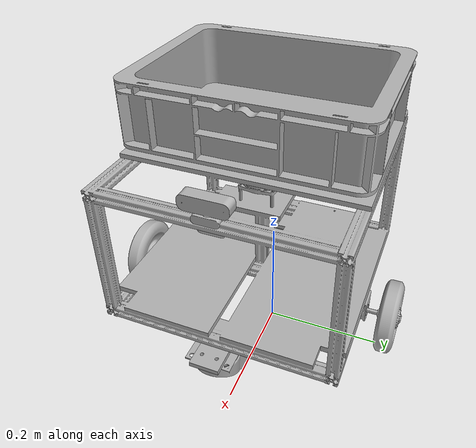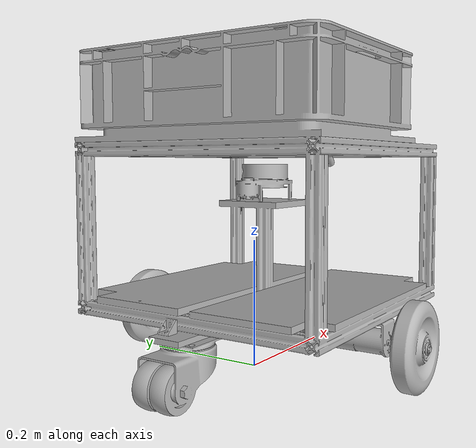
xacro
<?xml version="1.0" ?>
<robot name="Delivery_AMR" xmlns:xacro="http://www.ros.org/wiki/xacro">

<xacro:include filename="$(find Delivery_AMR_description)/urdf/materials.xacro" />
<xacro:include filename="$(find Delivery_AMR_description)/urdf/Delivery_AMR.trans" />
<xacro:include filename="$(find Delivery_AMR_description)/urdf/Delivery_AMR.gazebo" />
<link name="base_link">
  <inertial>
    <origin xyz="-0.01967676726979135 -0.023422975229163562 0.2794094009670926" rpy="0 0 0"/>
    <mass value="59.4671496370775"/>
    <inertia ixx="1.679844" iyy="1.618843" izz="1.519819" ixy="-0.007156" iyz="0.011635" ixz="0.216532"/>
  </inertial>
  <visual>
    <origin xyz="0 0 0" rpy="0 0 0"/>
    <geometry>
      <mesh filename="file://$(find Delivery_AMR_description)/meshes/base_link.stl" scale="0.001 0.001 0.001"/>
    </geometry>
    <material name="silver"/>
  </visual>
  <collision>
    <origin xyz="0 0 0" rpy="0 0 0"/>
    <geometry>
      <mesh filename="file://$(find Delivery_AMR_description)/meshes/base_link.stl" scale="0.001 0.001 0.001"/>
    </geometry>
  </collision>
</link>

<link name="camera_link_1">
  <inertial>
    <origin xyz="-0.20794283408158887 -0.030465835663023765 0.04146279121032548" rpy="0 0 0"/>
    <mass value="0.26884092997159614"/>
    <inertia ixx="0.000177" iyy="0.000142" izz="0.000134" ixy="-0.0" iyz="-1e-06" ixz="-3.7e-05"/>
  </inertial>
  <visual>
    <origin xyz="-0.39202 -0.005512 -0.320726" rpy="0 0 0"/>
    <geometry>
      <mesh filename="file://$(find Delivery_AMR_description)/meshes/camera_link_1.stl" scale="0.001 0.001 0.001"/>
    </geometry>
    <material name="silver"/>
  </visual>
  <collision>
    <origin xyz="-0.39202 -0.005512 -0.320726" rpy="0 0 0"/>
    <geometry>
      <mesh filename="file://$(find Delivery_AMR_description)/meshes/camera_link_1.stl" scale="0.001 0.001 0.001"/>
    </geometry>
  </collision>
</link>

<link name="lidar_link_1">
  <inertial>
    <origin xyz="-0.2104852567763647 -0.031154604330996167 0.05897555333368376" rpy="0 0 0"/>
    <mass value="0.14165595417779858"/>
    <inertia ixx="5.7e-05" iyy="8.9e-05" izz="0.000109" ixy="-0.0" iyz="1e-06" ixz="-1.2e-05"/>
  </inertial>
  <visual>
    <origin xyz="-0.19702 -0.005512 -0.241228" rpy="0 0 0"/>
    <geometry>
      <mesh filename="file://$(find Delivery_AMR_description)/meshes/lidar_link_1.stl" scale="0.001 0.001 0.001"/>
    </geometry>
    <material name="silver"/>
  </visual>
  <collision>
    <origin xyz="-0.19702 -0.005512 -0.241228" rpy="0 0 0"/>
    <geometry>
      <mesh filename="file://$(find Delivery_AMR_description)/meshes/lidar_link_1.stl" scale="0.001 0.001 0.001"/>
    </geometry>
  </collision>
</link>

<link name="front_caster_1">
  <inertial>
    <origin xyz="-0.03431123491915483 -2.6655464068631174e-07 -0.040385915763490744" rpy="0 0 0"/>
    <mass value="1.8260560500786551"/>
    <inertia ixx="0.001686" iyy="0.002418" izz="0.00198" ixy="-0.0" iyz="-0.0" ixz="-0.000772"/>
  </inertial>
  <visual>
    <origin xyz="-0.186662 0.025086 -0.093573" rpy="0 0 0"/>
    <geometry>
      <mesh filename="file://$(find Delivery_AMR_description)/meshes/front_caster_1.stl" scale="0.001 0.001   0.001"/>
    </geometry>
    <material name="silver"/>
  </visual>
  <collision>
    <origin xyz="0.0 0.0 -0.06" rpy="0 0 0"/>
    <geometry>
      <sphere radius="0.025086"/>
    </geometry>
  </collision>
</link>

<link name="back_caster_1">
  <inertial>
    <origin xyz="-0.03431123491913532 -2.665545824689919e-07 -0.040385915763494075" rpy="0 0 0"/>
    <mass value="1.8260560500786551"/>
    <inertia ixx="0.001686" iyy="0.002418" izz="0.00198" ixy="-0.0" iyz="-0.0" ixz="-0.000772"/>
  </inertial>
  <visual>
    <origin xyz="0.193338 0.025086 -0.093573" rpy="0 0 0"/>
    <geometry>
      <mesh filename="file://$(find Delivery_AMR_description)/meshes/back_caster_1.stl" scale="0.001 0.001 0.001"/>
    </geometry>
    <material name="silver"/>
  </visual>
  <collision>
    <origin xyz="0.0 0.0 -0.06" rpy="0 0 0"/>
    <geometry>
      <sphere radius="0.025086"/>
    </geometry>
  </collision>
</link>

<link name="right_wheel_1">
  <inertial>
    <origin xyz="2.8762713827866493e-08 -0.020637769984045623 3.171167901466765e-07" rpy="0 0 0"/>
    <mass value="2.6215076298549613"/>
    <inertia ixx="0.002857" iyy="0.005366" izz="0.002857" ixy="-0.0" iyz="0.0" ixz="0.0"/>
  </inertial>
  <visual>
    <origin xyz="0.003338 0.246086 -0.071354" rpy="0 0 0"/>
    <geometry>
      <mesh filename="file://$(find Delivery_AMR_description)/meshes/right_wheel_1.stl" scale="0.001 0.001 0.001"/>
    </geometry>
    <material name="silver"/>
  </visual>
  <collision>
    <origin xyz="0.003338 0.246086 -0.071354" rpy="0 0 0"/>
    <geometry>
      <mesh filename="file://$(find Delivery_AMR_description)/meshes/right_wheel_1.stl" scale="0.001 0.001 0.001"/>
    </geometry>
  </collision>
</link>

<link name="left_wheel_1">
  <inertial>
    <origin xyz="2.876271333173558e-08 0.020637230015948055 3.1711657630384416e-07" rpy="0 0 0"/>
    <mass value="2.6215076298549613"/>
    <inertia ixx="0.002857" iyy="0.005366" izz="0.002857" ixy="-0.0" iyz="0.0" ixz="0.0"/>
  </inertial>
  <visual>
    <origin xyz="0.003338 -0.195914 -0.071354" rpy="0 0 0"/>
    <geometry>
      <mesh filename="file://$(find Delivery_AMR_description)/meshes/left_wheel_1.stl" scale="0.001 0.001 0.001"/>
    </geometry>
    <material name="silver"/>
  </visual>
  <collision>
    <origin xyz="0.003338 -0.195914 -0.071354" rpy="0 0 0"/>
    <geometry>
      <mesh filename="file://$(find Delivery_AMR_description)/meshes/left_wheel_1.stl" scale="0.001 0.001 0.001"/>
    </geometry>
  </collision>
</link>

<joint name="Rigid 1" type="fixed">
  <origin xyz="0.39202 0.005512 0.320726" rpy="0 0 0"/>
  <parent link="base_link"/>
  <child link="camera_link_1"/>
</joint>

<joint name="Rigid 2" type="fixed">
  <origin xyz="0.19702 0.005512 0.241228" rpy="0 0 0"/>
  <parent link="base_link"/>
  <child link="lidar_link_1"/>
</joint>

<joint name="Rigid 3" type="fixed">
  <origin xyz="0.186662 -0.025086 0.093573" rpy="0 0 0"/>
  <parent link="base_link"/>
  <child link="front_caster_1"/>
</joint>

<joint name="Rigid 4" type="fixed">
  <origin xyz="-0.193338 -0.025086 0.093573" rpy="0 0 0"/>
  <parent link="base_link"/>
  <child link="back_caster_1"/>
</joint>

<joint name="Revolute 5" type="continuous">
  <origin xyz="-0.003338 -0.246086 0.071354" rpy="0 0 0"/>
  <parent link="base_link"/>
  <child link="right_wheel_1"/>
  <axis xyz="0.0 1.0 0.0"/>
</joint>

<joint name="Revolute 6" type="continuous">
  <origin xyz="-0.003338 0.195914 0.071354" rpy="0 0 0"/>
  <parent link="base_link"/>
  <child link="left_wheel_1"/>
  <axis xyz="0.0 1.0 0.0"/>
</joint>

<!-- BASE FOOTPRINT (Agar robot tidak tenggelam di lantai Gazebo) -->
<link name="base_footprint"/>
<joint name="base_footprint_joint" type="fixed">
  <origin xyz="0 0 0" rpy="0 0 0" />
  <parent link="base_link" />
  <child link="base_footprint" />
</joint>
<!-- DUMMY LINK KAMERA -->
<link name="camera_sensor_link"/>
<joint name="camera_sensor_joint" type="fixed">
  <!-- Ubah Pitch di sini jika ingin layarnya mendongak seperti sebelumnya -->
  <origin xyz="-0.18202 -0.029126 0.056738861534351113" rpy="0 0 0"/>
  <parent link="camera_link_1"/>
  <child link="camera_sensor_link"/>
</joint>
<!-- DUMMY LINK LIDAR -->
<link name="laser_frame"/>
<joint name="laser_joint" type="fixed">
  <origin xyz="-0.19702 -0.02412 0.0661241" rpy="0 0 0"/>
  <parent link="lidar_link_1"/>
  <child link="laser_frame"/>
</joint>

</robot>

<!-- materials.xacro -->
<robot name="Delivery_AMR" xmlns:xacro="http://www.ros.org/wiki/xacro" >

<material name="silver">
  <color rgba="0.700 0.700 0.700 1.000"/>
</material>

</robot>

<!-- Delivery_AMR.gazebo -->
<robot name="Delivery_AMR" xmlns:xacro="http://www.ros.org/wiki/xacro" >

<xacro:property name="body_color" value="Gazebo/Silver" />

<gazebo reference="base_link">
  <material>${body_color}</material>
  <mu1>0.2</mu1>
  <mu2>0.2</mu2>
  <self_collide>true</self_collide>
  <gravity>true</gravity>
</gazebo>

<gazebo reference="camera_link_1">
  <material>${body_color}</material>
  <mu1>0.2</mu1>
  <mu2>0.2</mu2>
  <self_collide>true</self_collide>
</gazebo>

<gazebo reference="lidar_link_1">
  <material>${body_color}</material>
  <mu1>0.2</mu1>
  <mu2>0.2</mu2>
  <self_collide>true</self_collide>
</gazebo>

<gazebo reference="front_caster_1">
  <material>${body_color}</material>
  <mu1>0.0</mu1>
  <mu2>0.0</mu2>
  <self_collide>true</self_collide>
</gazebo>

<gazebo reference="back_caster_1">
  <material>${body_color}</material>
  <mu1>0.0</mu1>
  <mu2>0.0</mu2>
  <self_collide>true</self_collide>
</gazebo>

<gazebo reference="right_wheel_1">
  <material>${body_color}</material>
  <mu1>1.5</mu1>
  <mu2>1.5</mu2>
  <kp>10000000.0</kp>
  <kd>100.0</kd>
  <self_collide>true</self_collide>
</gazebo>

<gazebo reference="left_wheel_1">
  <material>${body_color}</material>
  <mu1>1.5</mu1>
  <mu2>1.5</mu2>
  <kp>10000000.0</kp>
  <kd>100.0</kd>
  <self_collide>true</self_collide>
</gazebo>

<gazebo reference="base_footprint">
  <turnGravityOff>false</turnGravityOff>
</gazebo>
<!-- 1. PLUGIN PENGGERAK RODA (DIFF DRIVE) -->
<gazebo>
  <plugin name="diff_drive" filename="libgazebo_ros_diff_drive.so">
    <ros>
      <namespace>/</namespace>
      <remapping>cmd_vel:=cmd_vel</remapping>
      <remapping>odom:=odom</remapping>
    </ros>
    <left_joint>Revolute 6</left_joint>
    <right_joint>Revolute 5</right_joint>
    <wheel_separation>0.442</wheel_separation>
    <wheel_diameter>0.133</wheel_diameter>
    <max_wheel_torque>20</max_wheel_torque>
    <max_wheel_acceleration>5.0</max_wheel_acceleration>
    <publish_odom>true</publish_odom>
    <publish_odom_tf>true</publish_odom_tf>
    <publish_wheel_tf>true</publish_wheel_tf>
    <odometry_frame>odom</odometry_frame>
    <robot_base_frame>base_footprint</robot_base_frame>
  </plugin>
</gazebo>
<!-- 2. PLUGIN SENSOR LIDAR -->
<gazebo reference="laser_frame">
  <sensor name="lidar" type="ray">
    <always_on>true</always_on>
    <visualize>true</visualize>
    <update_rate>10</update_rate>
    <ray>
      <scan>
        <horizontal>
          <samples>360</samples>
          <resolution>1.000000</resolution>
          <min_angle>0.000000</min_angle>
          <max_angle>6.28319</max_angle>
        </horizontal>
      </scan>
      <range>
        <min>0.320000</min>
        <max>12.0</max>
        <resolution>0.015000</resolution>
      </range>
    </ray>
    <plugin name="scan" filename="libgazebo_ros_ray_sensor.so">
      <ros>
        <remapping>~/out:=scan</remapping>
        <qos>
          <topic name="scan">
            <publisher>
              <reliability>reliable</reliability>
            </publisher>
          </topic>
        </qos>
      </ros>
      <output_type>sensor_msgs/LaserScan</output_type>
      <frame_name>laser_frame</frame_name>
    </plugin>
  </sensor>
</gazebo>
<!-- 3. PLUGIN KAMERA -->
<gazebo reference="camera_sensor_link">
  <sensor name="camera_sensor" type="camera">
    <pose>0 0 0 0 0 0</pose>
    <visualize>true</visualize>
    <update_rate>30.0</update_rate>
    <camera>
      <horizontal_fov>1.089</horizontal_fov>
      <image>
        <format>R8G8B8</format>
        <width>640</width>
        <height>480</height>
      </image>
      <clip>
        <near>0.05</near>
        <far>8.0</far>
      </clip>
    </camera>
    <plugin name="camera_controller" filename="libgazebo_ros_camera.so">
      <frame_name>camera_sensor_link</frame_name>
    </plugin>
  </sensor>
</gazebo>

</robot>
